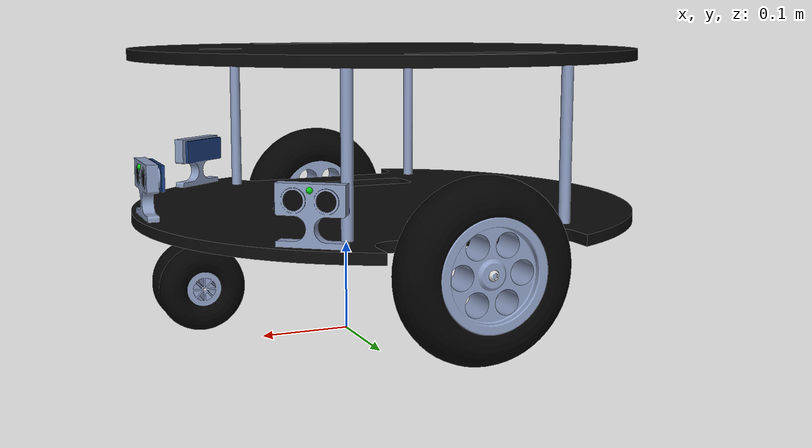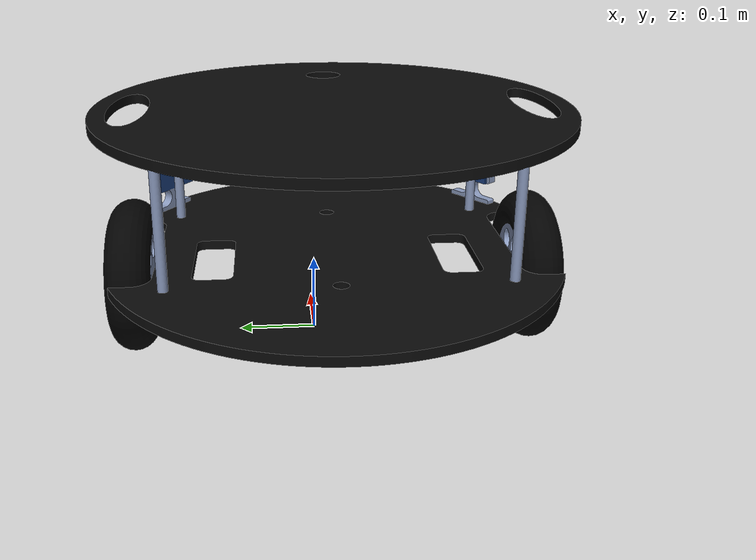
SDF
<?xml version='1.0'?>
<sdf version='1.6'>
  <model name='arlo_mejorado_precision_llantas'>

<!--    The base of the arlo robot base: lower and upper decks, and caster wheel (fixed)   -->
    <link name='link_base'>
      <inertial>
        <mass>9</mass>
        <inertia>
          <ixx>0.191043</ixx>
          <ixy>0</ixy>
          <ixz>0</ixz>
          <iyy>0.191043</iyy>
          <iyz>0</iyz>
          <izz>0.331905</izz>
        </inertia>
        <pose frame=''>0 0 0 0 0 0</pose>
      </inertial>
      <pose frame=''>-0.055242 -0.022166 0.153337 0 0 0</pose>
      <gravity>1</gravity>
      <self_collide>0</self_collide>
      <kinematic>0</kinematic>
      <enable_wind>0</enable_wind>
      <visual name='visual'>
        <pose frame=''>0 0 0 0 -0 0</pose>
        <geometry>
          <mesh>
            <uri>/home/monica/codigoPG/src/arlo_mejorado_precision_llantas/arlo_mejorado/models/arlodrive/meshes/arlo_base.dae</uri>
            <scale>1 1 1</scale>
          </mesh>
        </geometry>
        <transparency>0</transparency>
        <cast_shadows>1</cast_shadows>
      </visual>
      <collision name='collision'>
        <laser_retro>0</laser_retro>
        <max_contacts>10</max_contacts>
        <pose frame=''>0 0 0.070880 0 -0 0</pose>
        <geometry>
          <cylinder>
            <radius>0.288056</radius>
            <length>0.194</length>
          </cylinder>
        </geometry>
        <surface>
          <friction>
            <ode>
              <mu>1</mu>
              <mu2>1</mu2>
              <fdir1>0 0 0</fdir1>
              <slip1>0</slip1>
              <slip2>0</slip2>
            </ode>
            <torsional>
              <coefficient>1</coefficient>
              <patch_radius>0</patch_radius>
              <surface_radius>0</surface_radius>
              <use_patch_radius>1</use_patch_radius>
              <ode>
                <slip>0</slip>
              </ode>
            </torsional>
          </friction>
          <bounce>
            <restitution_coefficient>0</restitution_coefficient>
            <threshold>1e+06</threshold>
          </bounce>
          <contact>
            <collide_without_contact>0</collide_without_contact>
            <collide_without_contact_bitmask>1</collide_without_contact_bitmask>
            <collide_bitmask>1</collide_bitmask>
            <ode>
              <soft_cfm>0</soft_cfm>
              <soft_erp>0.2</soft_erp>
              <kp>1e+13</kp>
              <kd>1</kd>
              <max_vel>0.01</max_vel>
              <min_depth>0</min_depth>
            </ode>
            <bullet>
              <split_impulse>1</split_impulse>
              <split_impulse_penetration_threshold>-0.01</split_impulse_penetration_threshold>
              <soft_cfm>0</soft_cfm>
              <soft_erp>0.2</soft_erp>
              <kp>1e+13</kp>
              <kd>1</kd>
            </bullet>
          </contact>
        </surface>
      </collision>
    </link>

<!--    The caster wheel: an invisible sphere to simulate de real caster wheel.-->
    <link name='link_caster'>
      <inertial>
        <mass>5</mass>
        <inertia>
          <ixx>0.00043452</ixx>
          <ixy>0</ixy>
          <ixz>0</ixz>
          <iyy>0.00043452</iyy>
          <iyz>0</iyz>
          <izz>0.00043452</izz>
        </inertia>
        <pose frame=''>0 0 0 0 -0 0</pose>
      </inertial>
      <pose frame=''>0.167839 -0.022979 0.061862 0 -0 0</pose>
      <gravity>1</gravity>
      <self_collide>0</self_collide>
      <kinematic>0</kinematic>
      <enable_wind>0</enable_wind>
      <visual name='visual'>
        <pose frame=''>0 0 0 0 0 0</pose>
        <geometry>
          <sphere>
            <radius>0.0466108</radius>
          </sphere>
        </geometry>
<!--        This makes the sphere invisible -->
        <transparency>1</transparency>
        <cast_shadows>1</cast_shadows>
      </visual>
      <collision name='collision'>
        <laser_retro>0</laser_retro>
        <max_contacts>10</max_contacts>
        <pose frame=''>0 0 0 0 -0 0</pose>
        <geometry>
          <sphere>
            <radius>0.046611</radius>
          </sphere>
        </geometry>
        <surface>
          <friction>
            <ode>
              <mu>1</mu>
              <mu2>1</mu2>
              <fdir1>0 0 0</fdir1>
              <slip1>0</slip1>
              <slip2>0</slip2>
            </ode>
            <torsional>
              <coefficient>1</coefficient>
              <patch_radius>0</patch_radius>
              <surface_radius>0</surface_radius>
              <use_patch_radius>1</use_patch_radius>
              <ode>
                <slip>0</slip>
              </ode>
            </torsional>
          </friction>
          <bounce>
            <restitution_coefficient>0</restitution_coefficient>
            <threshold>1e+06</threshold>
          </bounce>
          <contact>
            <collide_without_contact>0</collide_without_contact>
            <collide_without_contact_bitmask>1</collide_without_contact_bitmask>
            <collide_bitmask>1</collide_bitmask>
            <ode>
              <soft_cfm>0</soft_cfm>
              <soft_erp>0.2</soft_erp>
              <kp>1e+13</kp>
              <kd>1</kd>
              <max_vel>0.01</max_vel>
              <min_depth>0</min_depth>
            </ode>
            <bullet>
              <split_impulse>1</split_impulse>
              <split_impulse_penetration_threshold>-0.01</split_impulse_penetration_threshold>
              <soft_cfm>0</soft_cfm>
              <soft_erp>0.2</soft_erp>
              <kp>1e+13</kp>
              <kd>1</kd>
            </bullet>
          </contact>
        </surface>
      </collision>
    </link>

<!--    The left wheel of the base-->
    <link name='link_wheel_left'>
      <inertial>
        <mass>1</mass>
        <inertia>
          <ixx>0.166667</ixx>
          <ixy>0</ixy>
          <ixz>0</ixz>
          <iyy>0.166667</iyy>
          <iyz>0</iyz>
          <izz>0.166667</izz>
        </inertia>
        <pose frame=''>0 0 0 0 -0 0</pose>
      </inertial>
      <pose frame=''>-0.055875 0.229601 0.109933 0 -0 0</pose>
      <gravity>1</gravity>
      <self_collide>0</self_collide>
      <kinematic>0</kinematic>
      <enable_wind>0</enable_wind>
      <visual name='visual'>
        <pose frame=''>0 0 0 0 -0 0</pose>
        <geometry>
          <mesh>
            <uri>/home/monica/codigoPG/src/arlo_mejorado_precision_llantas/arlo_mejorado/models/arlodrive/meshes/arlo_wheel_mejorado.dae</uri>
            <scale>1 1 1</scale>
          </mesh>
        </geometry>
        <transparency>0</transparency>
        <cast_shadows>1</cast_shadows>
      </visual>
      <collision name='collision'>
        <laser_retro>0</laser_retro>
        <max_contacts>10</max_contacts>
        <pose frame=''>0 0 0 0 -0 0</pose>
        <geometry>
          <mesh>
            <uri>/home/monica/codigoPG/src/arlo_mejorado_precision_llantas/arlo_mejorado/models/arlodrive/meshes/arlo_wheel_mejorado.dae</uri>
            <scale>1 1 1</scale>
          </mesh>
        </geometry>
        <surface>
          <friction>
            <ode>
              <mu>1</mu>
              <mu2>1</mu2>
              <fdir1>0 0 0</fdir1>
              <slip1>0</slip1>
              <slip2>0</slip2>
            </ode>
            <torsional>
              <coefficient>1</coefficient>
              <patch_radius>0</patch_radius>
              <surface_radius>0</surface_radius>
              <use_patch_radius>1</use_patch_radius>
              <ode>
                <slip>0</slip>
              </ode>
            </torsional>
          </friction>
          <bounce>
            <restitution_coefficient>0</restitution_coefficient>
            <threshold>1e+06</threshold>
          </bounce>
          <contact>
            <collide_without_contact>0</collide_without_contact>
            <collide_without_contact_bitmask>1</collide_without_contact_bitmask>
            <collide_bitmask>1</collide_bitmask>
            <ode>
              <soft_cfm>0</soft_cfm>
              <soft_erp>0.2</soft_erp>
              <kp>1e+13</kp>
              <kd>1</kd>
              <max_vel>0.01</max_vel>
              <min_depth>0</min_depth>
            </ode>
            <bullet>
              <split_impulse>1</split_impulse>
              <split_impulse_penetration_threshold>-0.01</split_impulse_penetration_threshold>
              <soft_cfm>0</soft_cfm>
              <soft_erp>0.2</soft_erp>
              <kp>1e+13</kp>
              <kd>1</kd>
            </bullet>
          </contact>
        </surface>
      </collision>
    </link>

<!--    The right wheel of the base -->
    <link name='link_wheel_right'>
      <inertial>
        <mass>1</mass>
        <inertia>
          <ixx>0.166667</ixx>
          <ixy>0</ixy>
          <ixz>0</ixz>
          <iyy>0.166667</iyy>
          <iyz>0</iyz>
          <izz>0.166667</izz>
        </inertia>
        <pose frame=''>0 0 0 0 -0 0</pose>
      </inertial>
      <pose frame=''>-0.055863 -0.273455 0.109933 0 0 -3.13728</pose>
      <gravity>1</gravity>
      <self_collide>0</self_collide>
      <kinematic>0</kinematic>
      <enable_wind>0</enable_wind>
      <visual name='visual'>
        <pose frame=''>0 0 0 0 -0 0</pose>
        <geometry>
          <mesh>
            <uri>/home/monica/codigoPG/src/arlo_mejorado_precision_llantas/arlo_mejorado/models/arlodrive/meshes/arlo_wheel_mejorado.dae</uri>
            <scale>1 1 1</scale>
          </mesh>
        </geometry>
        <transparency>0</transparency>
        <cast_shadows>1</cast_shadows>
        <material>
          <shader type='pixel'/>
          <emissive>0 0 0 1</emissive>
        </material>
      </visual>
      <collision name='collision'>
        <laser_retro>0</laser_retro>
        <max_contacts>10</max_contacts>
        <pose frame=''>0 0 0 0 -0 0</pose>
        <geometry>
          <mesh>
            <uri>/home/monica/codigoPG/src/arlo_mejorado_precision_llantas/arlo_mejorado/models/arlodrive/meshes/arlo_wheel_mejorado.dae</uri>
            <scale>1 1 1</scale>
          </mesh>
        </geometry>
        <surface>
          <friction>
            <ode>
              <mu>1</mu>
              <mu2>1</mu2>
              <fdir1>0 0 0</fdir1>
              <slip1>0</slip1>
              <slip2>0</slip2>
            </ode>
            <torsional>
              <coefficient>1</coefficient>
              <patch_radius>0</patch_radius>
              <surface_radius>0</surface_radius>
              <use_patch_radius>1</use_patch_radius>
              <ode>
                <slip>0</slip>
              </ode>
            </torsional>
          </friction>
          <bounce>
            <restitution_coefficient>0</restitution_coefficient>
            <threshold>1e+06</threshold>
          </bounce>
          <contact>
            <collide_without_contact>0</collide_without_contact>
            <collide_without_contact_bitmask>1</collide_without_contact_bitmask>
            <collide_bitmask>1</collide_bitmask>
            <ode>
              <soft_cfm>0</soft_cfm>
              <soft_erp>0.2</soft_erp>
              <kp>1e+13</kp>
              <kd>1</kd>
              <max_vel>0.01</max_vel>
              <min_depth>0</min_depth>
            </ode>
            <bullet>
              <split_impulse>1</split_impulse>
              <split_impulse_penetration_threshold>-0.01</split_impulse_penetration_threshold>
              <soft_cfm>0</soft_cfm>
              <soft_erp>0.2</soft_erp>
              <kp>1e+13</kp>
              <kd>1</kd>
            </bullet>
          </contact>
        </surface>
      </collision>
    </link>

<!--The three PING))) ultrasonic distance sensors (these are fixed with with a JOINT. -->
    <link name='link_sensor_center'>
      <gravity>0</gravity>
      <inertial>
        <mass>0.01</mass>
      </inertial>
      <pose frame=''>0.218715 -0.022229 0.17346 0 0 0</pose>
      <sensor name='head_hokuyo_sensor' type='ray'>
        <pose frame=''>0 0 0.0125 3.14159 0 0</pose>
        <visualize>1</visualize>
        <update_rate>30</update_rate>
        <ray>
          <noise>
            <type>gaussian</type>
            <mean>0</mean>
            <stddev>0.001</stddev>
          </noise>
          <scan>
            <horizontal>
              <samples>32</samples>
              <resolution>1</resolution>
              <min_angle>-0.4</min_angle>
              <max_angle>0.4</max_angle>
            </horizontal>
            <vertical>
              <samples>1</samples>
              <min_angle>0</min_angle>
              <max_angle>0</max_angle>
            </vertical>
          </scan>
          <range>
            <min>0.05</min>
            <max>3</max>
            <resolution>0.02</resolution>
          </range>
        </ray>
        <plugin name="sensor_center" filename="libgazebo_ros_ray_sensor.so">
          <ros>
            <remapping>~/out:=/arlo/laser/scan_center</remapping>
          </ros>
          <frame_name>link_sensor_center</frame_name>
          <output_type>sensor_msgs/LaserScan</output_type>
          <radiation_type>ultrasound</radiation_type>
        </plugin>
      </sensor>
      <visual name='visual'>
        <pose frame=''>0 0 0 0 -0 0</pose>
        <geometry>
          <mesh>
            <uri>/home/monica/codigoPG/src/arlo_mejorado_precision_llantas/arlo_mejorado/models/arlodrive/meshes/arlo_sensor.dae</uri>
            <scale>1 1 1</scale>
          </mesh>
        </geometry>
      </visual>
      <collision name='collision'>
        <pose frame=''>0 0 0 0 0 0</pose>
        <geometry>
          <mesh>
            <uri>/home/monica/codigoPG/src/arlo_mejorado_precision_llantas/arlo_mejorado/models/arlodrive/meshes/arlo_sensor.dae</uri>
            <scale>1 1 1</scale>
          </mesh>
        </geometry>
      </collision>
    </link>

    <link name='link_sensor_right'>
      <gravity>0</gravity>
      <inertial>
        <mass>0.01</mass>
      </inertial>
      <pose frame=''>0.113899 -0.237049 0.17346 0 0 -0.927292</pose>
      <sensor name='head_hokuyo_sensor' type='ray'>
        <pose frame=''>0 0 0.0125 3.14159 0 0</pose>
        <visualize>1</visualize>
        <update_rate>30</update_rate>
        <ray>
          <noise>
            <type>gaussian</type>
            <mean>0</mean>
            <stddev>0.001</stddev>
          </noise>
          <scan>
            <horizontal>
              <samples>32</samples>
              <resolution>1</resolution>
              <min_angle>-0.4</min_angle>
              <max_angle>0.4</max_angle>
            </horizontal>
            <vertical>
              <samples>1</samples>
              <min_angle>0</min_angle>
              <max_angle>0</max_angle>
            </vertical>
          </scan>
          <range>
            <min>0.05</min>
            <max>3</max>
            <resolution>0.02</resolution>
          </range>
        </ray>
        <plugin name="sensor_right" filename="libgazebo_ros_ray_sensor.so">
          <ros>
            <remapping>~/out:=/arlo/laser/scan_right</remapping>
          </ros>
          <frame_name>link_sensor_right</frame_name>
          <output_type>sensor_msgs/LaserScan</output_type>
          <radiation_type>ultrasound</radiation_type>
        </plugin>
      </sensor>
      <visual name='visual'>
        <pose frame=''>0 0 0 0 0 0</pose>
        <geometry>
          <mesh>
            <uri>/home/monica/codigoPG/src/arlo_mejorado_precision_llantas/arlo_mejorado/models/arlodrive/meshes/arlo_sensor.dae</uri>
            <scale>1 1 1</scale>
          </mesh>
        </geometry>
      </visual>
      <collision name='collision'>
        <pose frame=''>0 0 0 0 0 0</pose>
        <geometry>
          <mesh>
            <uri>/home/monica/codigoPG/src/arlo_mejorado_precision_llantas/arlo_mejorado/models/arlodrive/meshes/arlo_sensor.dae</uri>
            <scale>1 1 1</scale>
          </mesh>
        </geometry>
      </collision>
    </link>

    <link name='link_sensor_left'>
      <gravity>0</gravity>
      <inertial>
        <mass>0.01</mass>
      </inertial>
      <pose frame=''>0.10781 0.195066 0.17346 0 0 0.927292</pose>
      <sensor name='head_hokuyo_sensor' type='ray'>
        <pose frame=''>0 0 0.0125 3.14159 0 0</pose>
        <visualize>1</visualize>
        <update_rate>30</update_rate>
        <ray>
          <noise>
            <type>gaussian</type>
            <mean>0</mean>
            <stddev>0.001</stddev>
          </noise>
          <scan>
            <horizontal>
              <samples>32</samples>
              <resolution>1</resolution>
              <min_angle>-0.4</min_angle>
              <max_angle>0.4</max_angle>
            </horizontal>
            <vertical>
              <samples>1</samples>
              <min_angle>0</min_angle>
              <max_angle>0</max_angle>
            </vertical>
          </scan>
          <range>
            <min>0.05</min>
            <max>3</max>
            <resolution>0.02</resolution>
          </range>
        </ray>
        <plugin name="sensor_left" filename="libgazebo_ros_ray_sensor.so">
          <ros>
            <remapping>~/out:=/arlo/laser/scan_left</remapping>
          </ros>
          <frame_name>link_sensor_left</frame_name>
          <output_type>sensor_msgs/LaserScan</output_type>
          <radiation_type>ultrasound</radiation_type>
        </plugin>
      </sensor>
      <visual name='visual'>
        <pose frame=''>0 0 0 0 -0 0</pose>
        <geometry>
          <mesh>
            <uri>/home/monica/codigoPG/src/arlo_mejorado_precision_llantas/arlo_mejorado/models/arlodrive/meshes/arlo_sensor.dae</uri>
            <scale>1 1 1</scale>
          </mesh>
        </geometry>
      </visual>
      <collision name='collision'>
        <pose frame=''>0 0 0 0 -0 0</pose>
        <geometry>
          <mesh>
            <uri>/home/monica/codigoPG/src/arlo_mejorado_precision_llantas/arlo_mejorado/models/arlodrive/meshes/arlo_sensor.dae</uri>
            <scale>1 1 1</scale>
          </mesh>
        </geometry>
      </collision>
    </link>

<!--Joints for keeping fixed the three sonar sensors.    -->
    <joint name='link_base_JOINT_sensor_center' type='fixed'>
      <parent>link_base</parent>
      <child>link_sensor_center</child>
      <pose frame=''>0 0 0 0 -0 0</pose>
      <physics>
        <ode>
          <limit>
            <cfm>0</cfm>
            <erp>0.2</erp>
          </limit>
          <suspension>
            <cfm>0</cfm>
            <erp>0.2</erp>
          </suspension>
        </ode>
      </physics>
    </joint>
    <joint name='link_base_JOINT_sensor_right' type='fixed'>
      <parent>link_base</parent>
      <child>link_sensor_right</child>
      <pose frame=''>0 0 0 0 -0 0</pose>
      <physics>
        <ode>
          <limit>
            <cfm>0</cfm>
            <erp>0.2</erp>
          </limit>
          <suspension>
            <cfm>0</cfm>
            <erp>0.2</erp>
          </suspension>
        </ode>
      </physics>
    </joint>
    <joint name='link_base_JOINT_sensor_left' type='fixed'>
      <parent>link_base</parent>
      <child>link_sensor_left</child>
      <pose frame=''>0 0 0 0 -0 0</pose>
      <physics>
        <ode>
          <limit>
            <cfm>0</cfm>
            <erp>0.2</erp>
          </limit>
          <suspension>
            <cfm>0</cfm>
            <erp>0.2</erp>
          </suspension>
        </ode>
      </physics>
    </joint>
    <joint name='link_base_JOINT_caster' type='ball'>
      <parent>link_base</parent>
      <child>link_caster</child>
      <pose frame=''>0 0 0 0 -0 0</pose>
      <physics>
        <ode>
          <limit>
            <cfm>0</cfm>
            <erp>0.2</erp>
          </limit>
          <suspension>
            <cfm>0</cfm>
            <erp>0.2</erp>
          </suspension>
        </ode>
      </physics>
    </joint>
    <joint name='link_base_JOINT_wheel_left' type='revolute'>
      <parent>link_base</parent>
      <child>link_wheel_left</child>
      <pose frame=''>0 0 0 0 -0 0</pose>
      <axis>
        <xyz>0 1 0</xyz>
        <use_parent_model_frame>0</use_parent_model_frame>
        <limit>
          <lower>-1.79769e+308</lower>
          <upper>1.79769e+308</upper>
          <effort>-1</effort>
          <velocity>-1</velocity>
        </limit>
        <dynamics>
          <spring_reference>0</spring_reference>
          <spring_stiffness>0</spring_stiffness>
          <damping>0</damping>
          <friction>0</friction>
        </dynamics>
      </axis>
      <physics>
        <ode>
          <limit>
            <cfm>0</cfm>
            <erp>0.2</erp>
          </limit>
          <suspension>
            <cfm>0</cfm>
            <erp>0.2</erp>
          </suspension>
        </ode>
      </physics>
    </joint>
    <joint name='link_base_JOINT_wheel_right' type='revolute'>
      <parent>link_base</parent>
      <child>link_wheel_right</child>
      <pose frame=''>0 0 0 0 -0 0</pose>
      <axis>
        <xyz>0 -1 0</xyz>
        <use_parent_model_frame>0</use_parent_model_frame>
        <limit>
          <lower>-1.79769e+308</lower>
          <upper>1.79769e+308</upper>
          <effort>-1</effort>
          <velocity>-1</velocity>
        </limit>
        <dynamics>
          <spring_reference>0</spring_reference>
          <spring_stiffness>0</spring_stiffness>
          <damping>0</damping>
          <friction>0</friction>
        </dynamics>
      </axis>
      <physics>
        <ode>
          <limit>
            <cfm>0</cfm>
            <erp>0.2</erp>
          </limit>
          <suspension>
            <cfm>0</cfm>
            <erp>0.2</erp>
          </suspension>
        </ode>
      </physics>
    </joint>
    <static>0</static>
    <allow_auto_disable>1</allow_auto_disable>

    <plugin name="differential_drive_controller" filename="libgazebo_ros_diff_drive.so">
      <always_on>true</always_on>
      <legacy_mode>false</legacy_mode>
      <update_rate>20</update_rate>
      <left_joint>link_base_JOINT_wheel_left</left_joint>
      <right_joint>link_base_JOINT_wheel_right</right_joint>
      <wheel_separation>0.5</wheel_separation>
      <wheel_diameter>0.096</wheel_diameter>
      <torque>10</torque>

      <!--En vez de remapping-->
      <command_topic>cmd_vel</command_topic>

      <publish_odom>true</publish_odom>

      <odometry_topic>odom</odometry_topic>
      <odometry_frame>odom</odometry_frame>
      <torque>10</torque>
      <robot_base_frame>base_footprint</robot_base_frame>
    </plugin>
  </model>
</sdf>
